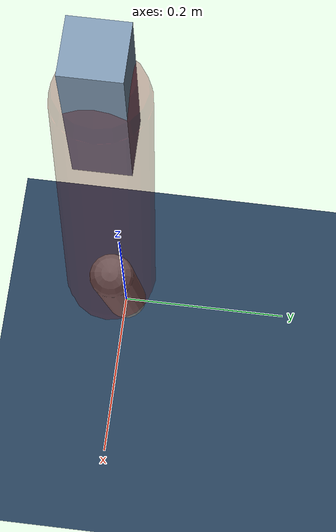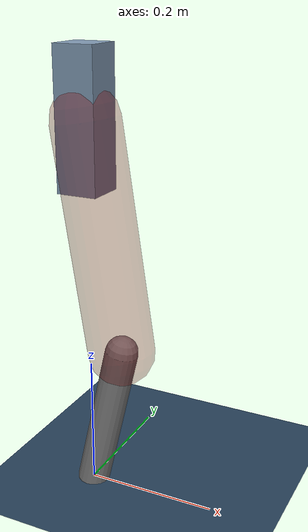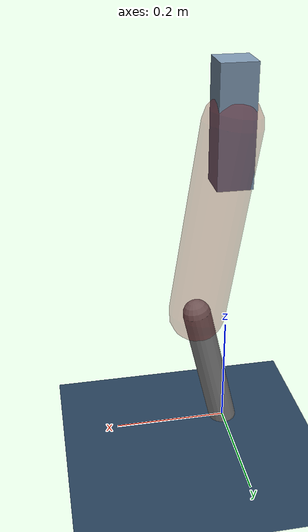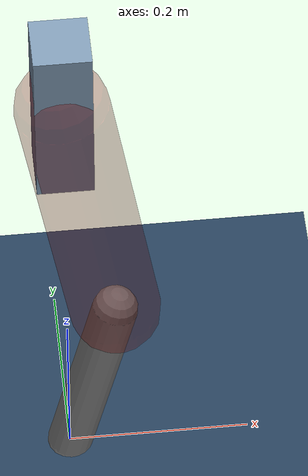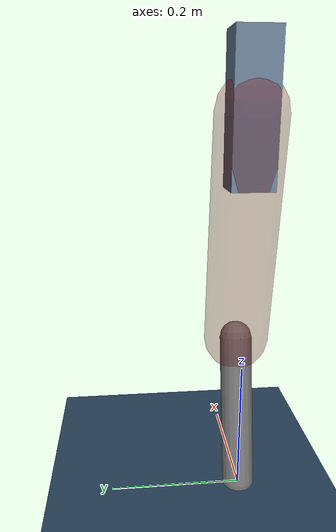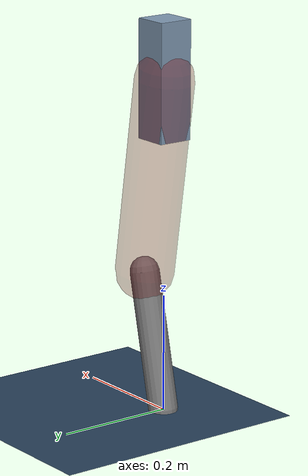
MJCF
<mujoco model="Hopper2D">
	<compiler inertiafromgeom="true" angle="radian" />
	<option timestep="0.001" integrator="implicit" cone="elliptic" solver="Newton" tolerance="1e-10" />

	<default>
		<geom contype="1" conaffinity="1" condim="3" friction="2 0.005 0.0001" solref="0.005 1" />
		<joint limited="true" damping="0.1" />
	</default>

	<asset>
		<texture name="skybox" type="skybox" builtin="gradient" rgb1=".4 .6 .8" rgb2="0 0 0" width="800" height="800" />
		<texture name="grid" type="2d" builtin="checker" rgb1=".1 .2 .3" rgb2=".2 .3 .4" width="300" height="300" mark="edge" markrgb=".2 .3 .4" />
		<material name="ground" texture="grid" texrepeat="1 1" texuniform="true" reflectance="0.1" />
		<material name="leg" rgba="0.5 0.6 0.7 1" />
	</asset>

	<worldbody>

		<geom name="floor" type="plane" size="5 5 0.25" material="ground" />

		<light directional="false" diffuse="0.8 0.8 0.8" specular="0.3 0.3 0.3" pos="0 0 2" dir="0 0 -1" />
		<light mode="targetbodycom" target="base" directional="false" diffuse="0.8 0.8 0.8" specular="0.3 0.3 0.3" pos="0 0 2" dir="0 0 -1" />

		<camera name="fixed" pos="0 -2 1" xyaxes="1 0 0 0 0 1" />
		<camera name="tracking" mode="trackcom" pos="0 -3 1" />

		<body name="root" pos="0 0 0.568575965826225">
			<joint name="slide_x" type="slide" axis="1 0 0" range="-100 100" />
			<joint name="slide_z" type="slide" axis="0 0 1" range="0 10" />

			<body name="base" pos="0 0 0">
				<geom name="torso" type="box" size="0.03 0.03 0.1" mass="2.9859999999999998" material="leg" />

				<body name="link1" pos="0 0 0" euler="0 1.416111657414745 0">
					<joint type="hinge" axis="0 -1 0" pos="0 0 0" name="hinge1" limited="true" range="-3.14 3.14" stiffness="0" damping="0.1" />
					<geom name="thigh" type="capsule" fromto="0 0 0 0.3416439664210835 0 0" size="0.05" rgba="0.5 0 0 0.3" mass="1.1032031059790337" />

					<body name="link2" pos="0.3416439664210835 0 0" euler="0 0.37871296839862423 0">
						<joint type="hinge" axis="0 -1 0" pos="0 0 0" name="hinge2" limited="true" range="-3.14 3.14" stiffness="0" damping="0.1" />
						<geom name="shank" type="capsule" fromto="0 0 0 0.23693199940514148 0 0" size="0.025" mass="0.43174559952411323" />

					</body>
				</body>
			</body>
		</body>
	</worldbody>

	<actuator>
		<motor name="torque1" joint="hinge1" ctrlrange="-76.87310631689232 76.87310631689232" ctrllimited="true" gear="1" />
		<motor name="torque2" joint="hinge2" ctrlrange="-113.38257554922052 113.38257554922052" ctrllimited="true" gear="1" />
	</actuator>
</mujoco>
